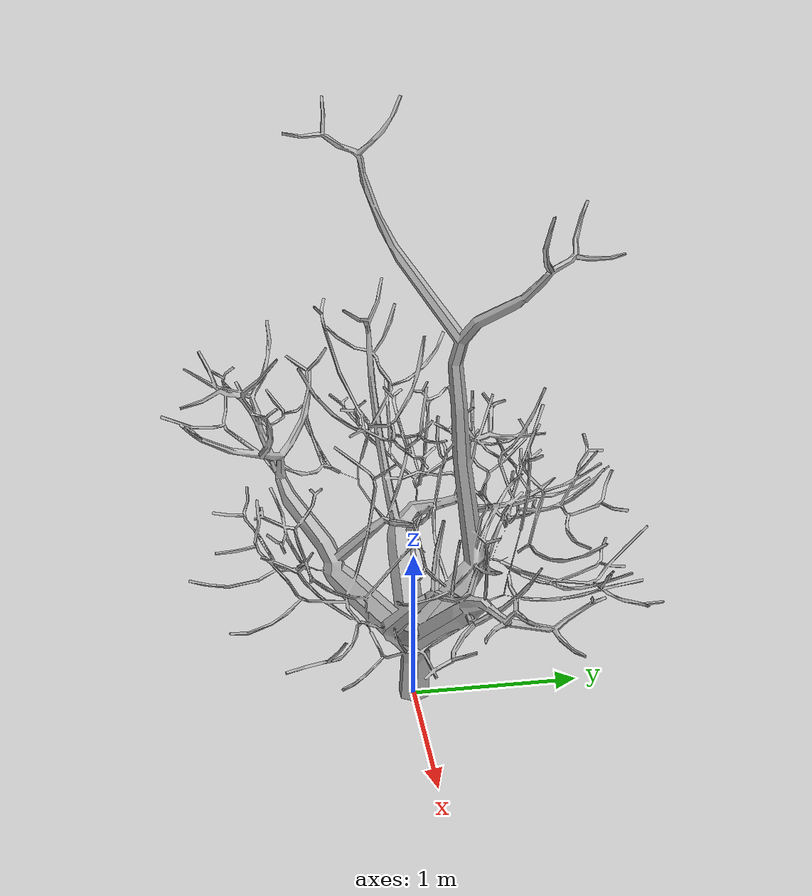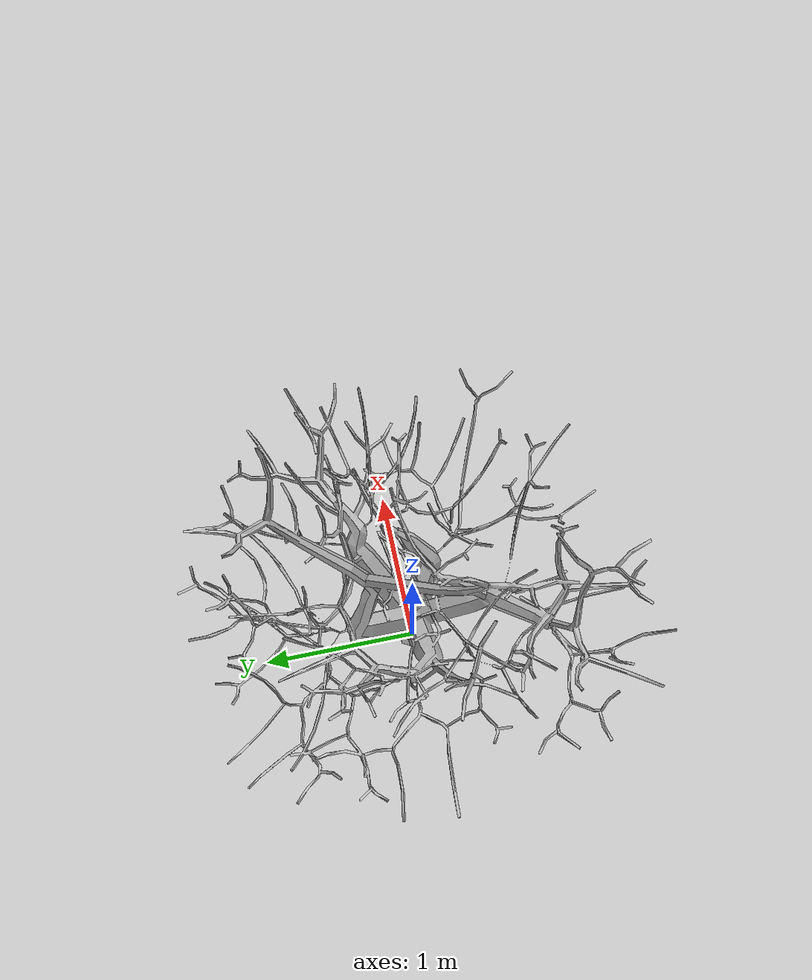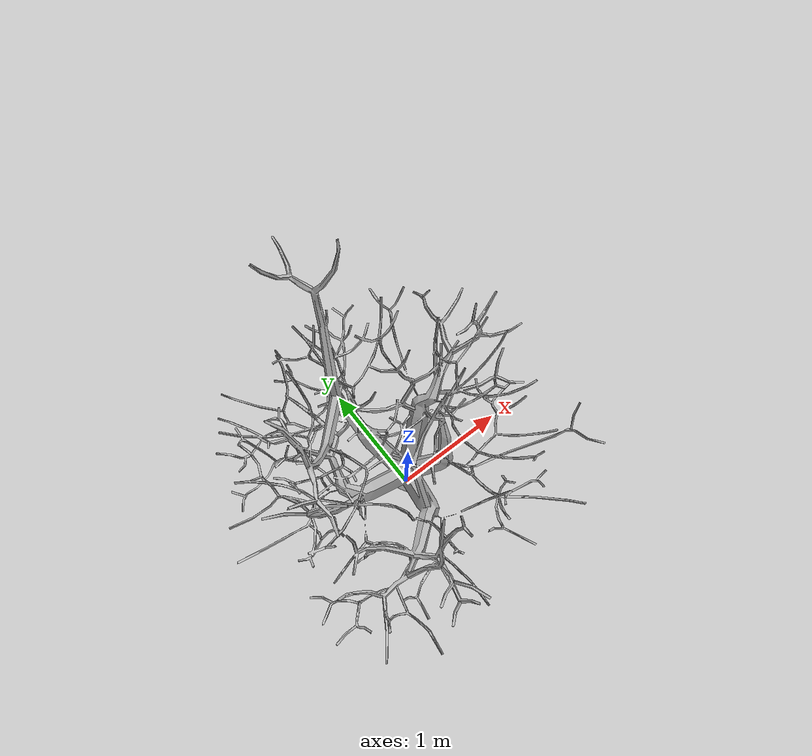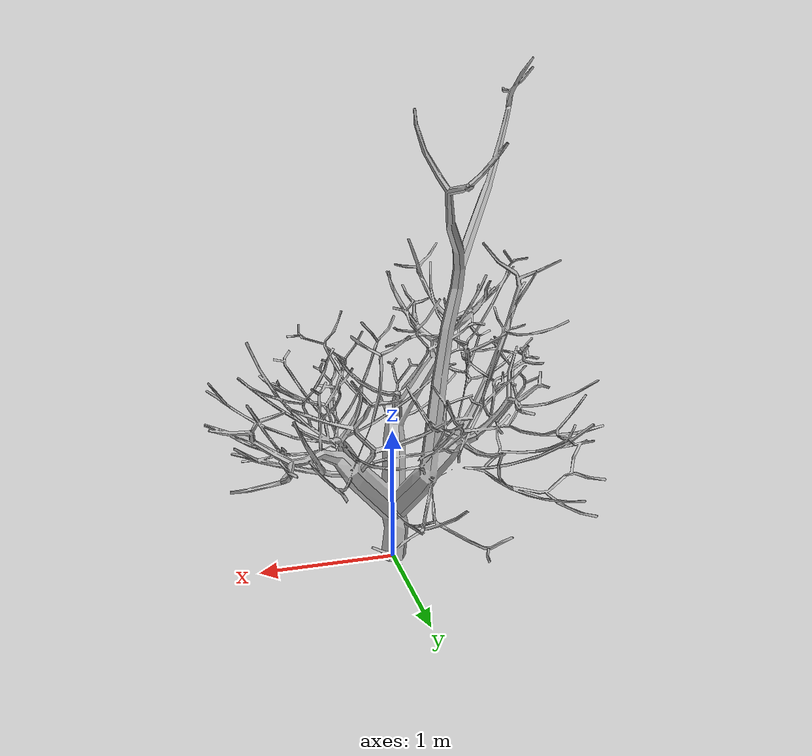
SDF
<?xml version="1.0" ?>
<sdf version="1.6">
  <model name="random_tree_4">
    <static>true</static>
    <link name="link">
      <visual name="visual">
        <geometry>
          <mesh>
            <uri>model://random_tree_4/meshes/random_tree_4.dae</uri>
          </mesh>
        </geometry>
      </visual>
      <collision name="collision">
        <geometry>
          <mesh>
            <uri>model://random_tree_4/meshes/random_tree_4.dae</uri>
          </mesh>
        </geometry>
      </collision>
    </link>
  </model>
</sdf>
